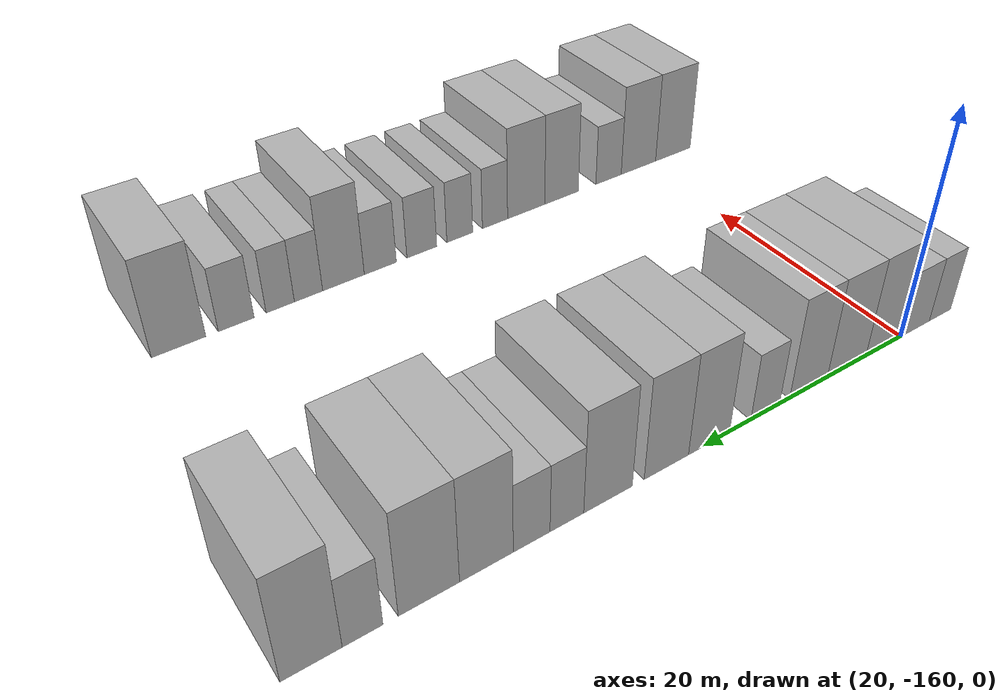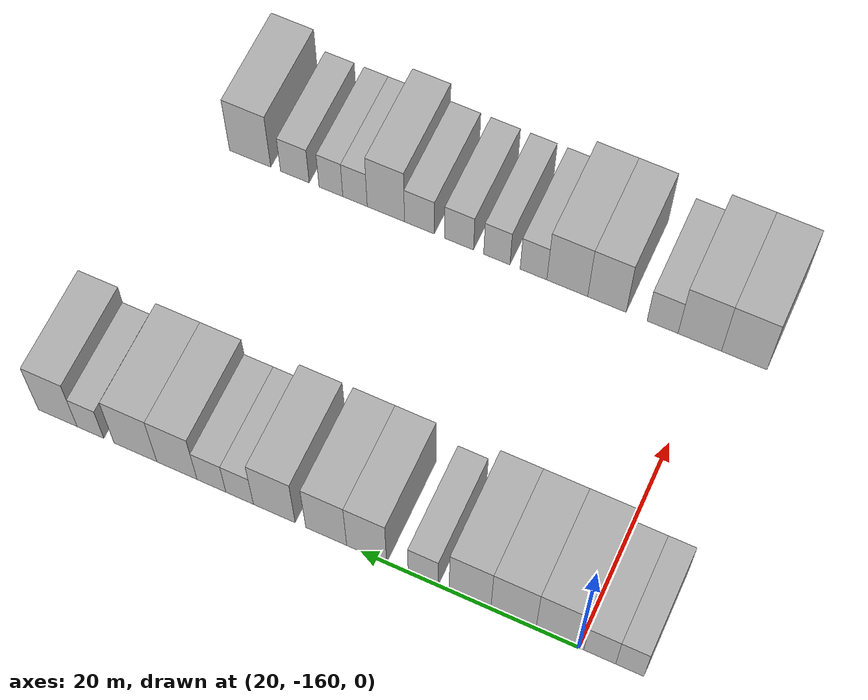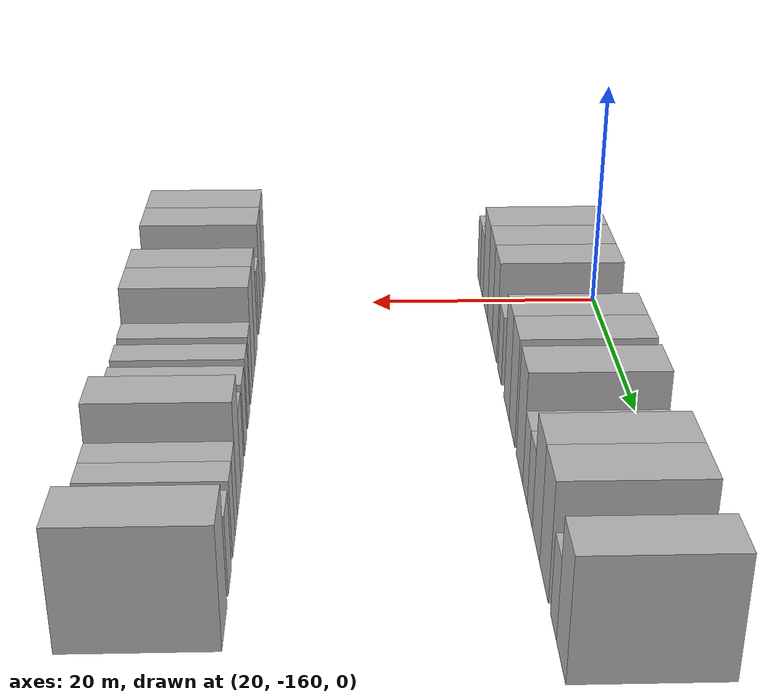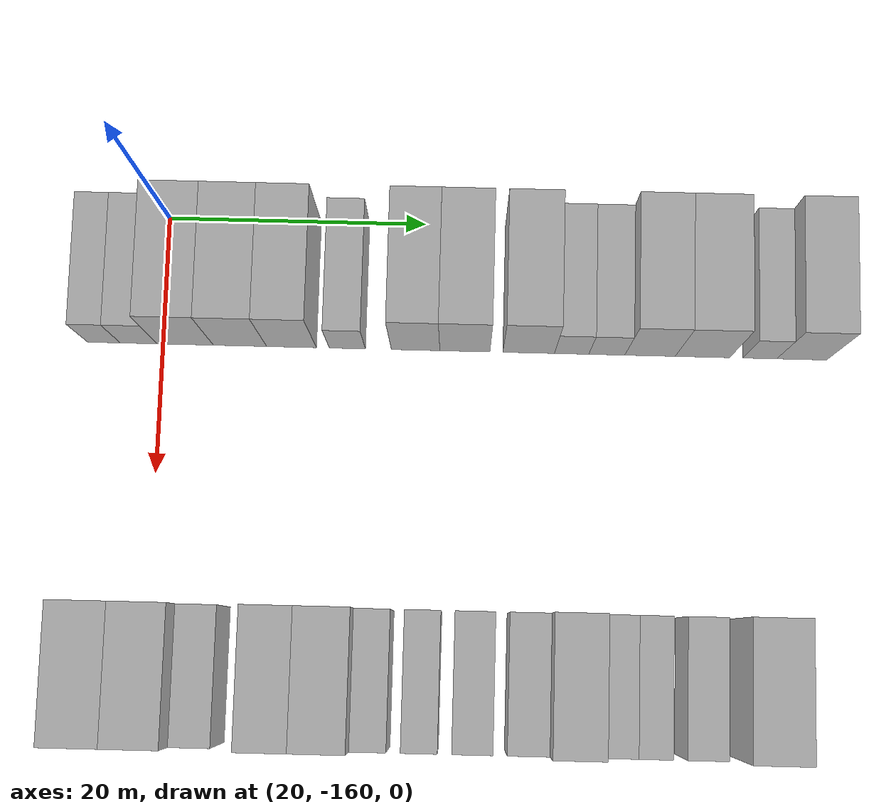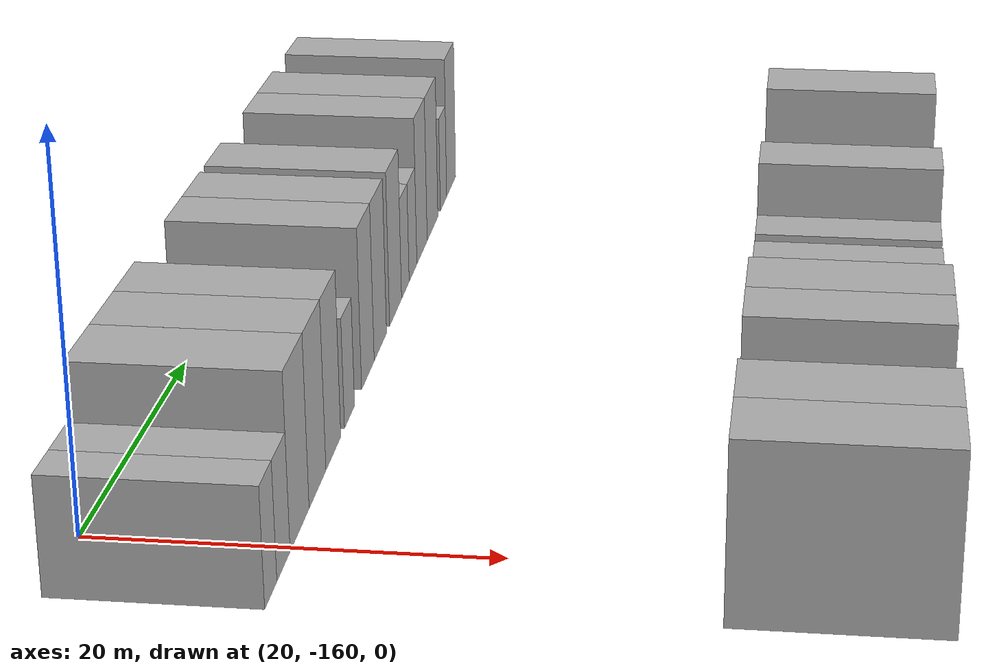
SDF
<sdf version="1.6">
 <world name="default">
  <model name="building_15">
   <static>1</static>
   <pose>25.0000 -164.5388 0 0.000000 0.000000 0.000000</pose>
   <link name="link">
    <pose>0 0 3.00 0 0 0</pose>
    <collision name="collision"><geometry><box><size>10.0000 2.5134 6.0000</size></box></geometry></collision>
    <visual name="visual">
     <cast_shadows>0</cast_shadows>
     <geometry><box><size>10.0000 2.5134 6.0000</size></box></geometry>
     <material>
      <script>
       <uri>model://HANNAS_wall/materials/scripts</uri>
       <uri>model://HANNAS_wall/materials/textures</uri>
       <name>vrc/HANNAS_wall</name>
      </script>
     </material>
    </visual>
   </link>
  </model>
  <model name="building_16">
   <static>1</static>
   <pose>25.0000 -161.8554 0 0.000000 0.000000 0.000000</pose>
   <link name="link">
    <pose>0 0 3.00 0 0 0</pose>
    <collision name="collision"><geometry><box><size>10.0000 2.8534 6.0000</size></box></geometry></collision>
    <visual name="visual">
     <cast_shadows>0</cast_shadows>
     <geometry><box><size>10.0000 2.8534 6.0000</size></box></geometry>
     <material>
      <script>
       <uri>model://HANNAS_wall/materials/scripts</uri>
       <uri>model://HANNAS_wall/materials/textures</uri>
       <name>vrc/HANNAS_wall</name>
      </script>
     </material>
    </visual>
   </link>
  </model>
  <model name="building_17">
   <static>1</static>
   <pose>25.0000 -158.2648 0 0.000000 0.000000 0.000000</pose>
   <link name="link">
    <pose>0 0 4.50 0 0 0</pose>
    <collision name="collision"><geometry><box><size>10.0000 4.3278 9.0000</size></box></geometry></collision>
    <visual name="visual">
     <cast_shadows>0</cast_shadows>
     <geometry><box><size>10.0000 4.3278 9.0000</size></box></geometry>
     <material>
      <script>
       <uri>model://HANNAS_wall/materials/scripts</uri>
       <uri>model://HANNAS_wall/materials/textures</uri>
       <name>vrc/HANNAS_wall</name>
      </script>
     </material>
    </visual>
   </link>
  </model>
  <model name="building_18">
   <static>1</static>
   <pose>25.0000 -154.0507 0 0.000000 0.000000 0.000000</pose>
   <link name="link">
    <pose>0 0 4.50 0 0 0</pose>
    <collision name="collision"><geometry><box><size>10.0000 4.1003 9.0000</size></box></geometry></collision>
    <visual name="visual">
     <cast_shadows>0</cast_shadows>
     <geometry><box><size>10.0000 4.1003 9.0000</size></box></geometry>
     <material>
      <script>
       <uri>model://HANNAS_wall/materials/scripts</uri>
       <uri>model://HANNAS_wall/materials/textures</uri>
       <name>vrc/HANNAS_wall</name>
      </script>
     </material>
    </visual>
   </link>
  </model>
  <model name="building_19">
   <static>1</static>
   <pose>25.0000 -150.0863 0 0.000000 0.000000 0.000000</pose>
   <link name="link">
    <pose>0 0 4.50 0 0 0</pose>
    <collision name="collision"><geometry><box><size>10.0000 3.8285 9.0000</size></box></geometry></collision>
    <visual name="visual">
     <cast_shadows>0</cast_shadows>
     <geometry><box><size>10.0000 3.8285 9.0000</size></box></geometry>
     <material>
      <script>
       <uri>model://HANNAS_wall/materials/scripts</uri>
       <uri>model://HANNAS_wall/materials/textures</uri>
       <name>vrc/HANNAS_wall</name>
      </script>
     </material>
    </visual>
   </link>
  </model>
  <model name="building_20">
   <static>1</static>
   <pose>25.0000 -145.7861 0 0.000000 0.000000 0.000000</pose>
   <link name="link">
    <pose>0 0 3.00 0 0 0</pose>
    <collision name="collision"><geometry><box><size>10.0000 2.7718 6.0000</size></box></geometry></collision>
    <visual name="visual">
     <cast_shadows>0</cast_shadows>
     <geometry><box><size>10.0000 2.7718 6.0000</size></box></geometry>
     <material>
      <script>
       <uri>model://HANNAS_wall/materials/scripts</uri>
       <uri>model://HANNAS_wall/materials/textures</uri>
       <name>vrc/HANNAS_wall</name>
      </script>
     </material>
    </visual>
   </link>
  </model>
  <model name="building_21">
   <static>1</static>
   <pose>25.0000 -140.5354 0 0.000000 0.000000 0.000000</pose>
   <link name="link">
    <pose>0 0 4.50 0 0 0</pose>
    <collision name="collision"><geometry><box><size>10.0000 3.7296 9.0000</size></box></geometry></collision>
    <visual name="visual">
     <cast_shadows>0</cast_shadows>
     <geometry><box><size>10.0000 3.7296 9.0000</size></box></geometry>
     <material>
      <script>
       <uri>model://HANNAS_wall/materials/scripts</uri>
       <uri>model://HANNAS_wall/materials/textures</uri>
       <name>vrc/HANNAS_wall</name>
      </script>
     </material>
    </visual>
   </link>
  </model>
  <model name="building_22">
   <static>1</static>
   <pose>25.0000 -136.7452 0 0.000000 0.000000 0.000000</pose>
   <link name="link">
    <pose>0 0 4.50 0 0 0</pose>
    <collision name="collision"><geometry><box><size>10.0000 3.8507 9.0000</size></box></geometry></collision>
    <visual name="visual">
     <cast_shadows>0</cast_shadows>
     <geometry><box><size>10.0000 3.8507 9.0000</size></box></geometry>
     <material>
      <script>
       <uri>model://HANNAS_wall/materials/scripts</uri>
       <uri>model://HANNAS_wall/materials/textures</uri>
       <name>vrc/HANNAS_wall</name>
      </script>
     </material>
    </visual>
   </link>
  </model>
  <model name="building_23">
   <static>1</static>
   <pose>25.0000 -131.8363 0 0.000000 0.000000 0.000000</pose>
   <link name="link">
    <pose>0 0 4.50 0 0 0</pose>
    <collision name="collision"><geometry><box><size>10.0000 3.9670 9.0000</size></box></geometry></collision>
    <visual name="visual">
     <cast_shadows>0</cast_shadows>
     <geometry><box><size>10.0000 3.9670 9.0000</size></box></geometry>
     <material>
      <script>
       <uri>model://HANNAS_wall/materials/scripts</uri>
       <uri>model://HANNAS_wall/materials/textures</uri>
       <name>vrc/HANNAS_wall</name>
      </script>
     </material>
    </visual>
   </link>
  </model>
  <model name="building_24">
   <static>1</static>
   <pose>25.0000 -128.5348 0 0.000000 0.000000 0.000000</pose>
   <link name="link">
    <pose>0 0 3.00 0 0 0</pose>
    <collision name="collision"><geometry><box><size>10.0000 2.6360 6.0000</size></box></geometry></collision>
    <visual name="visual">
     <cast_shadows>0</cast_shadows>
     <geometry><box><size>10.0000 2.6360 6.0000</size></box></geometry>
     <material>
      <script>
       <uri>model://HANNAS_wall/materials/scripts</uri>
       <uri>model://HANNAS_wall/materials/textures</uri>
       <name>vrc/HANNAS_wall</name>
      </script>
     </material>
    </visual>
   </link>
  </model>
  <model name="building_25">
   <static>1</static>
   <pose>25.0000 -125.8305 0 0.000000 0.000000 0.000000</pose>
   <link name="link">
    <pose>0 0 3.00 0 0 0</pose>
    <collision name="collision"><geometry><box><size>10.0000 2.7727 6.0000</size></box></geometry></collision>
    <visual name="visual">
     <cast_shadows>0</cast_shadows>
     <geometry><box><size>10.0000 2.7727 6.0000</size></box></geometry>
     <material>
      <script>
       <uri>model://HANNAS_wall/materials/scripts</uri>
       <uri>model://HANNAS_wall/materials/textures</uri>
       <name>vrc/HANNAS_wall</name>
      </script>
     </material>
    </visual>
   </link>
  </model>
  <model name="building_26">
   <static>1</static>
   <pose>25.0000 -122.5052 0 0.000000 0.000000 0.000000</pose>
   <link name="link">
    <pose>0 0 4.50 0 0 0</pose>
    <collision name="collision"><geometry><box><size>10.0000 3.8780 9.0000</size></box></geometry></collision>
    <visual name="visual">
     <cast_shadows>0</cast_shadows>
     <geometry><box><size>10.0000 3.8780 9.0000</size></box></geometry>
     <material>
      <script>
       <uri>model://HANNAS_wall/materials/scripts</uri>
       <uri>model://HANNAS_wall/materials/textures</uri>
       <name>vrc/HANNAS_wall</name>
      </script>
     </material>
    </visual>
   </link>
  </model>
  <model name="building_27">
   <static>1</static>
   <pose>25.0000 -118.4681 0 0.000000 0.000000 0.000000</pose>
   <link name="link">
    <pose>0 0 4.50 0 0 0</pose>
    <collision name="collision"><geometry><box><size>10.0000 4.1962 9.0000</size></box></geometry></collision>
    <visual name="visual">
     <cast_shadows>0</cast_shadows>
     <geometry><box><size>10.0000 4.1962 9.0000</size></box></geometry>
     <material>
      <script>
       <uri>model://HANNAS_wall/materials/scripts</uri>
       <uri>model://HANNAS_wall/materials/textures</uri>
       <name>vrc/HANNAS_wall</name>
      </script>
     </material>
    </visual>
   </link>
  </model>
  <model name="building_28">
   <static>1</static>
   <pose>25.0000 -114.0590 0 0.000000 0.000000 0.000000</pose>
   <link name="link">
    <pose>0 0 3.00 0 0 0</pose>
    <collision name="collision"><geometry><box><size>10.0000 2.6220 6.0000</size></box></geometry></collision>
    <visual name="visual">
     <cast_shadows>0</cast_shadows>
     <geometry><box><size>10.0000 2.6220 6.0000</size></box></geometry>
     <material>
      <script>
       <uri>model://HANNAS_wall/materials/scripts</uri>
       <uri>model://HANNAS_wall/materials/textures</uri>
       <name>vrc/HANNAS_wall</name>
      </script>
     </material>
    </visual>
   </link>
  </model>
  <model name="building_29">
   <static>1</static>
   <pose>25.0000 -110.8329 0 0.000000 0.000000 0.000000</pose>
   <link name="link">
    <pose>0 0 4.50 0 0 0</pose>
    <collision name="collision"><geometry><box><size>10.0000 3.8302 9.0000</size></box></geometry></collision>
    <visual name="visual">
     <cast_shadows>0</cast_shadows>
     <geometry><box><size>10.0000 3.8302 9.0000</size></box></geometry>
     <material>
      <script>
       <uri>model://HANNAS_wall/materials/scripts</uri>
       <uri>model://HANNAS_wall/materials/textures</uri>
       <name>vrc/HANNAS_wall</name>
      </script>
     </material>
    </visual>
   </link>
  </model>
  <model name="building_131">
   <static>1</static>
   <pose>55.0000 -163.0974 0 0.000000 0.000000 0.000000</pose>
   <link name="link">
    <pose>0 0 4.50 0 0 0</pose>
    <collision name="collision"><geometry><box><size>10.0000 4.2861 9.0000</size></box></geometry></collision>
    <visual name="visual">
     <cast_shadows>0</cast_shadows>
     <geometry><box><size>10.0000 4.2861 9.0000</size></box></geometry>
     <material>
      <script>
       <uri>model://HANNAS_wall/materials/scripts</uri>
       <uri>model://HANNAS_wall/materials/textures</uri>
       <name>vrc/HANNAS_wall</name>
      </script>
     </material>
    </visual>
   </link>
  </model>
  <model name="building_132">
   <static>1</static>
   <pose>55.0000 -158.8907 0 0.000000 0.000000 0.000000</pose>
   <link name="link">
    <pose>0 0 4.50 0 0 0</pose>
    <collision name="collision"><geometry><box><size>10.0000 4.1274 9.0000</size></box></geometry></collision>
    <visual name="visual">
     <cast_shadows>0</cast_shadows>
     <geometry><box><size>10.0000 4.1274 9.0000</size></box></geometry>
     <material>
      <script>
       <uri>model://HANNAS_wall/materials/scripts</uri>
       <uri>model://HANNAS_wall/materials/textures</uri>
       <name>vrc/HANNAS_wall</name>
      </script>
     </material>
    </visual>
   </link>
  </model>
  <model name="building_133">
   <static>1</static>
   <pose>55.0000 -155.3497 0 0.000000 0.000000 0.000000</pose>
   <link name="link">
    <pose>0 0 3.00 0 0 0</pose>
    <collision name="collision"><geometry><box><size>10.0000 2.9546 6.0000</size></box></geometry></collision>
    <visual name="visual">
     <cast_shadows>0</cast_shadows>
     <geometry><box><size>10.0000 2.9546 6.0000</size></box></geometry>
     <material>
      <script>
       <uri>model://HANNAS_wall/materials/scripts</uri>
       <uri>model://HANNAS_wall/materials/textures</uri>
       <name>vrc/HANNAS_wall</name>
      </script>
     </material>
    </visual>
   </link>
  </model>
  <model name="building_134">
   <static>1</static>
   <pose>55.0000 -150.0129 0 0.000000 0.000000 0.000000</pose>
   <link name="link">
    <pose>0 0 4.50 0 0 0</pose>
    <collision name="collision"><geometry><box><size>10.0000 3.7191 9.0000</size></box></geometry></collision>
    <visual name="visual">
     <cast_shadows>0</cast_shadows>
     <geometry><box><size>10.0000 3.7191 9.0000</size></box></geometry>
     <material>
      <script>
       <uri>model://HANNAS_wall/materials/scripts</uri>
       <uri>model://HANNAS_wall/materials/textures</uri>
       <name>vrc/HANNAS_wall</name>
      </script>
     </material>
    </visual>
   </link>
  </model>
  <model name="building_135">
   <static>1</static>
   <pose>55.0000 -146.1677 0 0.000000 0.000000 0.000000</pose>
   <link name="link">
    <pose>0 0 4.50 0 0 0</pose>
    <collision name="collision"><geometry><box><size>10.0000 3.9712 9.0000</size></box></geometry></collision>
    <visual name="visual">
     <cast_shadows>0</cast_shadows>
     <geometry><box><size>10.0000 3.9712 9.0000</size></box></geometry>
     <material>
      <script>
       <uri>model://HANNAS_wall/materials/scripts</uri>
       <uri>model://HANNAS_wall/materials/textures</uri>
       <name>vrc/HANNAS_wall</name>
      </script>
     </material>
    </visual>
   </link>
  </model>
  <model name="building_136">
   <static>1</static>
   <pose>55.0000 -142.8790 0 0.000000 0.000000 0.000000</pose>
   <link name="link">
    <pose>0 0 3.00 0 0 0</pose>
    <collision name="collision"><geometry><box><size>10.0000 2.6063 6.0000</size></box></geometry></collision>
    <visual name="visual">
     <cast_shadows>0</cast_shadows>
     <geometry><box><size>10.0000 2.6063 6.0000</size></box></geometry>
     <material>
      <script>
       <uri>model://HANNAS_wall/materials/scripts</uri>
       <uri>model://HANNAS_wall/materials/textures</uri>
       <name>vrc/HANNAS_wall</name>
      </script>
     </material>
    </visual>
   </link>
  </model>
  <model name="building_137">
   <static>1</static>
   <pose>55.0000 -139.2829 0 0.000000 0.000000 0.000000</pose>
   <link name="link">
    <pose>0 0 3.00 0 0 0</pose>
    <collision name="collision"><geometry><box><size>10.0000 2.5858 6.0000</size></box></geometry></collision>
    <visual name="visual">
     <cast_shadows>0</cast_shadows>
     <geometry><box><size>10.0000 2.5858 6.0000</size></box></geometry>
     <material>
      <script>
       <uri>model://HANNAS_wall/materials/scripts</uri>
       <uri>model://HANNAS_wall/materials/textures</uri>
       <name>vrc/HANNAS_wall</name>
      </script>
     </material>
    </visual>
   </link>
  </model>
  <model name="building_138">
   <static>1</static>
   <pose>55.0000 -135.5457 0 0.000000 0.000000 0.000000</pose>
   <link name="link">
    <pose>0 0 3.00 0 0 0</pose>
    <collision name="collision"><geometry><box><size>10.0000 2.8887 6.0000</size></box></geometry></collision>
    <visual name="visual">
     <cast_shadows>0</cast_shadows>
     <geometry><box><size>10.0000 2.8887 6.0000</size></box></geometry>
     <material>
      <script>
       <uri>model://HANNAS_wall/materials/scripts</uri>
       <uri>model://HANNAS_wall/materials/textures</uri>
       <name>vrc/HANNAS_wall</name>
      </script>
     </material>
    </visual>
   </link>
  </model>
  <model name="building_139">
   <static>1</static>
   <pose>55.0000 -131.6107 0 0.000000 0.000000 0.000000</pose>
   <link name="link">
    <pose>0 0 3.00 0 0 0</pose>
    <collision name="collision"><geometry><box><size>10.0000 2.9811 6.0000</size></box></geometry></collision>
    <visual name="visual">
     <cast_shadows>0</cast_shadows>
     <geometry><box><size>10.0000 2.9811 6.0000</size></box></geometry>
     <material>
      <script>
       <uri>model://HANNAS_wall/materials/scripts</uri>
       <uri>model://HANNAS_wall/materials/textures</uri>
       <name>vrc/HANNAS_wall</name>
      </script>
     </material>
    </visual>
   </link>
  </model>
  <model name="building_140">
   <static>1</static>
   <pose>55.0000 -128.2485 0 0.000000 0.000000 0.000000</pose>
   <link name="link">
    <pose>0 0 4.50 0 0 0</pose>
    <collision name="collision"><geometry><box><size>10.0000 3.7433 9.0000</size></box></geometry></collision>
    <visual name="visual">
     <cast_shadows>0</cast_shadows>
     <geometry><box><size>10.0000 3.7433 9.0000</size></box></geometry>
     <material>
      <script>
       <uri>model://HANNAS_wall/materials/scripts</uri>
       <uri>model://HANNAS_wall/materials/textures</uri>
       <name>vrc/HANNAS_wall</name>
      </script>
     </material>
    </visual>
   </link>
  </model>
  <model name="building_141">
   <static>1</static>
   <pose>55.0000 -125.1434 0 0.000000 0.000000 0.000000</pose>
   <link name="link">
    <pose>0 0 3.00 0 0 0</pose>
    <collision name="collision"><geometry><box><size>10.0000 2.4670 6.0000</size></box></geometry></collision>
    <visual name="visual">
     <cast_shadows>0</cast_shadows>
     <geometry><box><size>10.0000 2.4670 6.0000</size></box></geometry>
     <material>
      <script>
       <uri>model://HANNAS_wall/materials/scripts</uri>
       <uri>model://HANNAS_wall/materials/textures</uri>
       <name>vrc/HANNAS_wall</name>
      </script>
     </material>
    </visual>
   </link>
  </model>
  <model name="building_142">
   <static>1</static>
   <pose>55.0000 -122.7060 0 0.000000 0.000000 0.000000</pose>
   <link name="link">
    <pose>0 0 3.00 0 0 0</pose>
    <collision name="collision"><geometry><box><size>10.0000 2.4078 6.0000</size></box></geometry></collision>
    <visual name="visual">
     <cast_shadows>0</cast_shadows>
     <geometry><box><size>10.0000 2.4078 6.0000</size></box></geometry>
     <material>
      <script>
       <uri>model://HANNAS_wall/materials/scripts</uri>
       <uri>model://HANNAS_wall/materials/textures</uri>
       <name>vrc/HANNAS_wall</name>
      </script>
     </material>
    </visual>
   </link>
  </model>
  <model name="building_143">
   <static>1</static>
   <pose>55.0000 -119.0363 0 0.000000 0.000000 0.000000</pose>
   <link name="link">
    <pose>0 0 3.00 0 0 0</pose>
    <collision name="collision"><geometry><box><size>10.0000 2.9316 6.0000</size></box></geometry></collision>
    <visual name="visual">
     <cast_shadows>0</cast_shadows>
     <geometry><box><size>10.0000 2.9316 6.0000</size></box></geometry>
     <material>
      <script>
       <uri>model://HANNAS_wall/materials/scripts</uri>
       <uri>model://HANNAS_wall/materials/textures</uri>
       <name>vrc/HANNAS_wall</name>
      </script>
     </material>
    </visual>
   </link>
  </model>
  <model name="building_144">
   <static>1</static>
   <pose>55.0000 -114.4488 0 0.000000 0.000000 0.000000</pose>
   <link name="link">
    <pose>0 0 4.50 0 0 0</pose>
    <collision name="collision"><geometry><box><size>10.0000 4.2433 9.0000</size></box></geometry></collision>
    <visual name="visual">
     <cast_shadows>0</cast_shadows>
     <geometry><box><size>10.0000 4.2433 9.0000</size></box></geometry>
     <material>
      <script>
       <uri>model://HANNAS_wall/materials/scripts</uri>
       <uri>model://HANNAS_wall/materials/textures</uri>
       <name>vrc/HANNAS_wall</name>
      </script>
     </material>
    </visual>
   </link>
  </model>
 </world>
</sdf>
